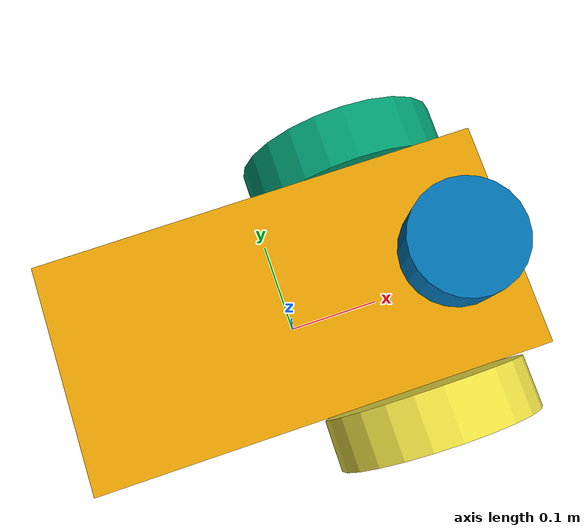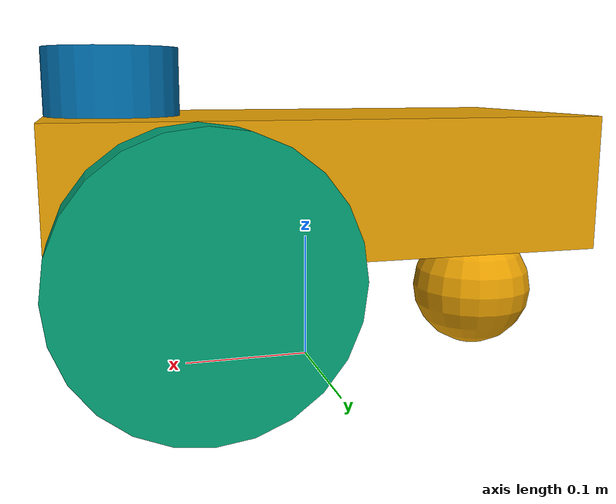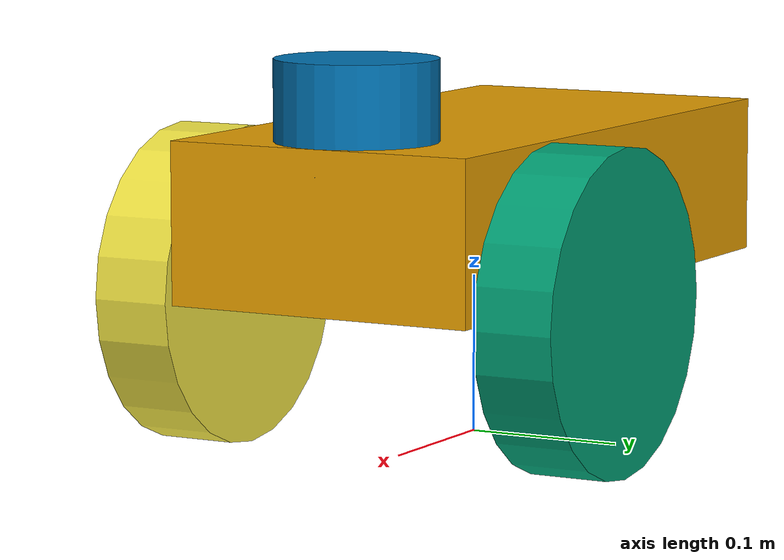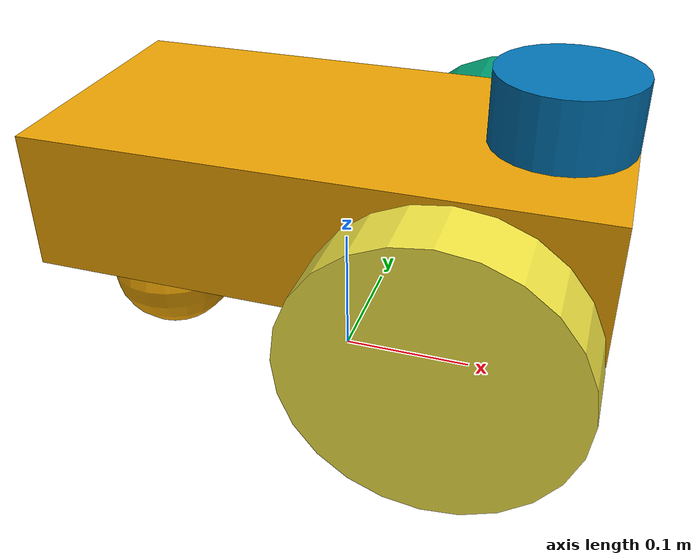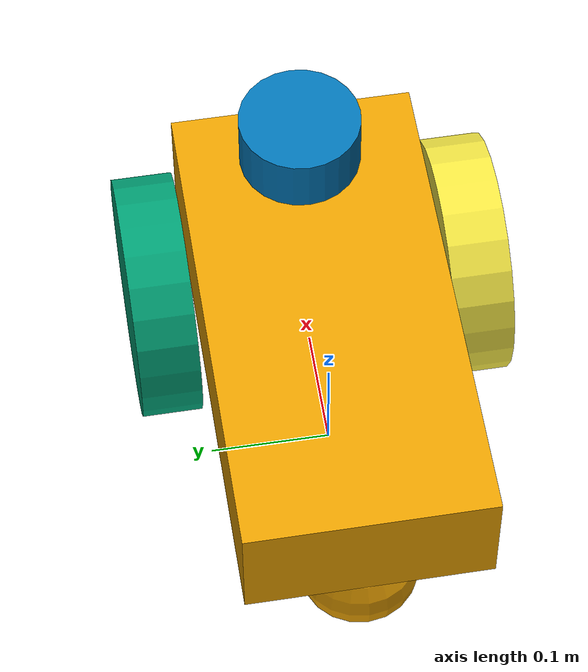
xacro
<?xml version="1.0" ?>

<robot name="$(arg roboname)" xmlns:xacro="http://www.ros.org/wiki/xacro">

<xacro:property name="PI" value="3.1415926835897931"/>

<!--Car Body-->
  <link name="robot_chassis">

    <collision name="chassis_collision">
      <origin xyz="0  0  0.1" rpy="0 0 0"/>
      <geometry>
        <box size=".4 .2 .1"/>
      </geometry>
    </collision>
    <collision name="caster_collision">
      <origin xyz="-0.15  0    0.05" rpy="0 0 0"/>
      <geometry>
        <sphere radius=".05"/>
      </geometry>
    </collision>
    <visual name="chassis_visual">
      <origin xyz="0   0   0.15" rpy="0 0 0"/>
      <geometry>
        <box size=".4 .2 .1"/>
      </geometry>
    </visual>
    <visual name="caster_visual">
      <origin xyz="-0.15  0    0.05" rpy="0 0 0"/>
      <geometry>
        <sphere radius=".05"/>
      </geometry>
    </visual>
  </link>

  <joint name="inertial_joint" type="fixed">
    <parent link="robot_chassis"/>
    <child link="main_mass"/>
    <origin xyz="0 0 0" rpy="0 0 0"/>
  </joint>

  <link name="main_mass" type="fixed">
    <inertial>
      <origin xyz="0 0 0" rpy="0 0 0"/>
      <mass value="5"/>
      <inertia ixx="0.40000"  ixy="0.000000"  ixz="0.000000"  iyy="1"  iyz="0.000000" izz="1"/>
    </inertial>
  </link>

<!--left wheel-->
  <link name="left_wheel">
    <inertial>
      <mass value="20"/>
      <origin xyz="0 0 0" rpy="0 0 0"/>
      <inertia ixx="0.5" ixy="0" ixz="0" iyy="0.5" iyz="0" izz="1"/>
    </inertial>
    <collision name="left_wheel_collision">
      <origin xyz="0   0   0.03" rpy="0 0 0"/>
      <geometry>
        <cylinder radius=".1" length=".05"/>
      </geometry>
    </collision>
    <visual name="left_wheel_visual">
      <origin xyz="0   0   0.03" rpy="0 0 0"/>
      <geometry>
        <cylinder radius=".1" length=".05"/>
      </geometry>
    </visual>
  </link>
  <joint name="left_wheel_joint" type="continuous">
    <parent link="robot_chassis"/>
    <child link="left_wheel"/>
    <origin xyz="0.1 0.1 0.1" rpy="0   ${PI/2} ${PI/2}"/>
    <axis xyz="0 0 1.e+00"/>
    <limit lower="-10000" upper="10000" effort="10000" velocity="10000"/>
  </joint>

<!--right wheel-->
  <link name="right_wheel">
    <inertial>
      <mass value="20"/>
      <origin xyz="0 0 0" rpy="0 0 0"/>
      <inertia ixx="0.5" ixy="0" ixz="0" iyy="0.5" iyz="0" izz="1"/>
    </inertial>
    <collision name="right_wheel_collision">
      <origin xyz="0    0   -0.03" rpy="0 0 0"/>
      <geometry>
        <cylinder radius=".1" length=".05"/>
      </geometry>
    </collision>
    <visual name="right_wheel_visual">
      <origin xyz="0    0   -0.03" rpy="0 0 0"/>
      <geometry>
        <cylinder radius=".1" length=".05"/>
      </geometry>
    </visual>
  </link>

  <joint name="right_wheel_joint" type="continuous">
    <parent link="robot_chassis"/>
    <child link="right_wheel"/>
    <origin xyz="0.1 -0.1  0.1" rpy="0  ${PI/2} ${PI/2}"/>
    <axis xyz="0 0 1.e+00"/>
    <limit lower="-10000" upper="10000" effort="10000" velocity="10000"/>
  </joint>

<!--laser sensor-->
  <link name="sensor_laser">
    <inertial>
      <origin xyz="0 0 0" rpy="0 0 0" />
      <mass value="1" />
      <!-- RANDOM INERTIA BELOW -->
      <inertia ixx="0.02" ixy="0" ixz="0" iyy="0.02" iyz="0" izz="0.02"/>
    </inertial>

    <visual>
      <origin xyz="0 0 0" rpy="0 0 0" />
      <geometry>
        <cylinder radius="0.05" length="0.1"/>
      </geometry>
    </visual>

    <collision>
      <origin xyz="0 0 0" rpy="0 0 0"/>
      <geometry>
        <cylinder radius="0.05" length="0.06"/>
      </geometry>
    </collision>
  </link>

  <joint name="joint_sensor_laser" type="fixed">
    <origin xyz="0.15 0 0.20" rpy="0 0 0"/>
    <parent link="robot_chassis"/>
    <child link="sensor_laser"/>
  </joint>

<!-- motors and transmissions for the two wheels -->
  <transmission name="trans_right">
    <type>transmission_interface/SimpleTransmission</type>
    <joint name="right_wheel_joint">
      <hardwareInterface>hardware_interface/VelocityJointInterface</hardwareInterface>
    </joint>
    <actuator name="motor_right">
      <hardwareInterface>hardware_interface/VelocityJointInterface</hardwareInterface>
      <mechanicalReduction>1</mechanicalReduction>
    </actuator>
  </transmission>

  <transmission name="trans_left">
    <type>transmission_interface/SimpleTransmission</type>
    <joint name="left_wheel_joint">
      <hardwareInterface>hardware_interface/VelocityJointInterface</hardwareInterface>
    </joint>
    <actuator name="motor_left">
      <hardwareInterface>hardware_interface/VelocityJointInterface</hardwareInterface>
      <mechanicalReduction>1</mechanicalReduction>
    </actuator>
  </transmission>

<!--plugin-->

 <gazebo reference="sensor_laser">
    <sensor type="ray" name="head_hokuyo_sensor">
      <pose>0 0 0 0 0 0</pose>
      <visualize>false</visualize>
      <update_rate>20</update_rate>
      <ray>
        <scan>
          <horizontal>
            <samples>720</samples>
            <resolution>1</resolution>
            <min_angle>-1.570796</min_angle>
            <max_angle>1.570796</max_angle>
          </horizontal>
        </scan>
        <range>
          <min>0.10</min>
          <max>10.0</max>
          <resolution>0.01</resolution>
        </range>
        <noise>
          <type>gaussian</type>
          <mean>0.0</mean>
          <stddev>0.01</stddev>
        </noise>
      </ray>
      <plugin name="gazebo_ros_head_hokuyo_controller" filename="libgazebo_ros_laser.so">
        <topicName>/brokk/laser/scan</topicName>
        <frameName>sensor_laser</frameName>
      </plugin>
    </sensor>
 </gazebo>

 <gazebo>
    <plugin filename="libgazebo_ros_diff_drive.so" name="differential_drive_controller">
      <alwaysOn>true</alwaysOn>
      <updateRate>20</updateRate>
      <leftJoint>left_wheel_joint</leftJoint>
      <rightJoint>right_wheel_joint</rightJoint>
      <wheelSeparation>0.4</wheelSeparation>
      <wheelDiameter>0.2</wheelDiameter>
      <torque>0.1</torque>
      <commandTopic>cmd_vel</commandTopic>
      <odometryTopic>odom</odometryTopic>
      <odometryFrame>odom</odometryFrame>
      <robotBaseFrame>robot_chassis</robotBaseFrame>
    </plugin>
  </gazebo>

  <gazebo>
    <plugin name="gazebo_ros_control" filename="libgazebo_ros_control.so">
      <robotNamespace>/$(arg roboname)</robotNamespace>
      <robotParam>robot_description</robotParam>
      <robotSimType>gazebo_ros_control/DefaultRobotHWSim</robotSimType>
    </plugin>
  </gazebo>

  <gazebo>
    <plugin name="joint_state_publisher" filename="libgazebo_ros_joint_state_publisher.so">
      <jointName>left_wheel_joint, right_wheel_joint </jointName>
      <updateRate>50.0</updateRate>
      <robotNamespace>/$(arg roboname)</robotNamespace>
      <alwaysOn>true</alwaysOn>
    </plugin>
  </gazebo>

</robot>
